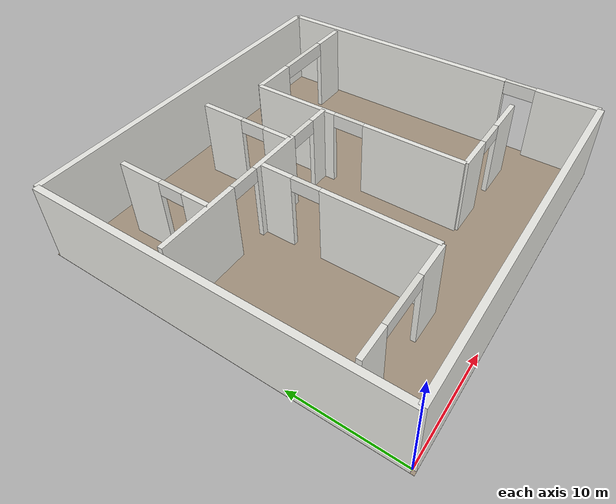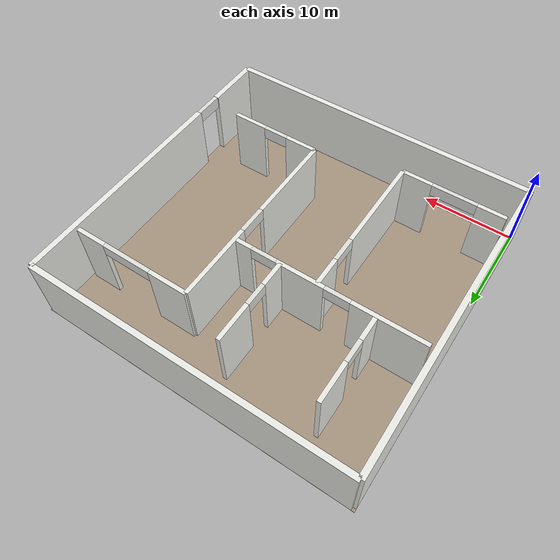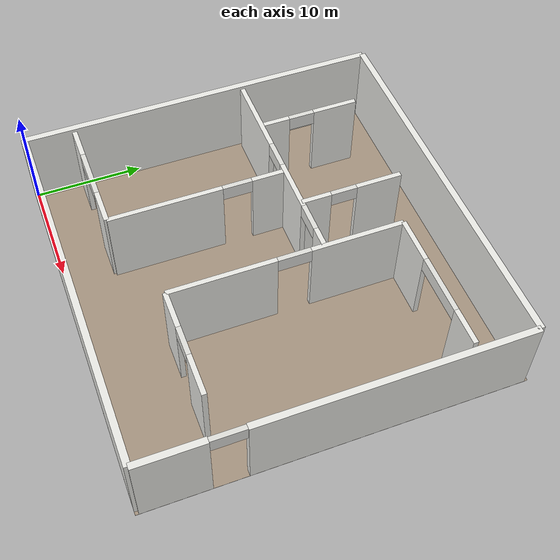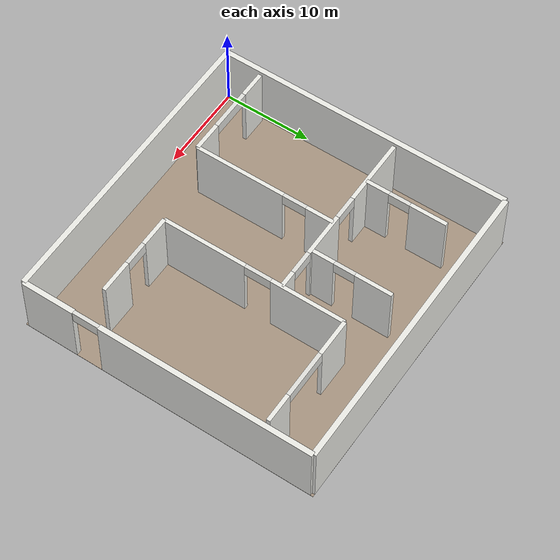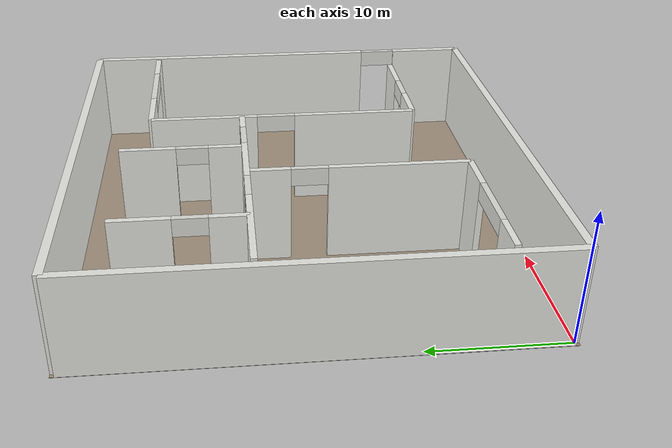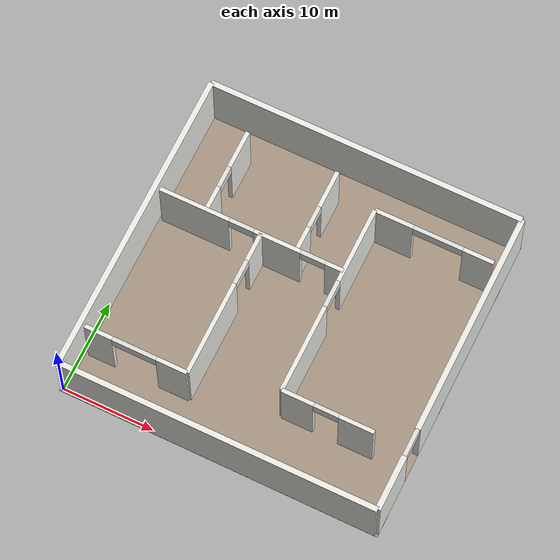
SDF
<sdf version="1.8">
 <world name="semnav_apartment">
  <gravity>0 0 -9.81</gravity>
  <physics name="1ms" type="ode">
   <real_time_update_rate>1000</real_time_update_rate>
   <max_step_size>0.001</max_step_size>
   <real_time_factor>1</real_time_factor>
   <ode>
    <solver>
     <type>quick</type>
     <iters>150</iters>
     <precon_iters>0</precon_iters>
     <sor>1.3999999999999999</sor>
     <use_dynamic_moi_rescaling>true</use_dynamic_moi_rescaling>
    </solver>
    <constraints>
     <cfm>1.0000000000000001e-05</cfm>
     <erp>0.20000000000000001</erp>
     <contact_max_correcting_vel>2000</contact_max_correcting_vel>
     <contact_surface_layer>0.01</contact_surface_layer>
    </constraints>
   </ode>
  </physics>
  <plugin filename="gz-sim-physics-system" name="gz::sim::systems::Physics"/>
  <plugin filename="gz-sim-user-commands-system" name="gz::sim::systems::UserCommands"/>
  <plugin filename="gz-sim-scene-broadcaster-system" name="gz::sim::systems::SceneBroadcaster"/>
  <plugin filename="gz-sim-sensors-system" name="gz::sim::systems::Sensors">
   <render_engine>ogre2</render_engine>
  </plugin>
  <plugin filename="gz-sim-imu-system" name="gz::sim::systems::Imu"/>
  <plugin filename="gz-sim-contact-system" name="gz::sim::systems::Contact"/>
  <scene><ambient>0.45 0.45 0.45</ambient><background>0.72 0.75 0.80</background></scene>
  <light type="directional" name="sun">
   <pose>0 0 8 0 0 0</pose>
   <diffuse>0.85 0.85 0.85 1</diffuse>
   <specular>0.2 0.2 0.2 1</specular>
   <direction>-0.4 0.3 -1</direction>
  </light>
  <light type="point" name="light_room_00">
   <pose>5.850 2.400 7.050 0 0 0</pose>
   <diffuse>0.72 0.72 0.68 1</diffuse>
   <attenuation><range>15.55</range></attenuation>
  </light>
  <light type="point" name="light_room_01">
   <pose>6.000 12.600 7.050 0 0 0</pose>
   <diffuse>0.72 0.72 0.68 1</diffuse>
   <attenuation><range>15.55</range></attenuation>
  </light>
  <light type="point" name="light_room_02">
   <pose>16.275 12.600 7.050 0 0 0</pose>
   <diffuse>0.72 0.72 0.68 1</diffuse>
   <attenuation><range>15.55</range></attenuation>
  </light>
  <light type="point" name="light_room_03">
   <pose>3.150 25.350 7.050 0 0 0</pose>
   <diffuse>0.72 0.72 0.68 1</diffuse>
   <attenuation><range>15.55</range></attenuation>
  </light>
  <light type="point" name="light_room_04">
   <pose>10.650 25.350 7.050 0 0 0</pose>
   <diffuse>0.72 0.72 0.68 1</diffuse>
   <attenuation><range>15.55</range></attenuation>
  </light>
  <light type="point" name="light_room_05">
   <pose>18.150 25.350 7.050 0 0 0</pose>
   <diffuse>0.72 0.72 0.68 1</diffuse>
   <attenuation><range>15.55</range></attenuation>
  </light>
  <light type="point" name="light_room_06">
   <pose>25.650 3.750 7.050 0 0 0</pose>
   <diffuse>0.72 0.72 0.68 1</diffuse>
   <attenuation><range>15.55</range></attenuation>
  </light>
  <light type="point" name="light_room_07">
   <pose>27.150 17.400 7.050 0 0 0</pose>
   <diffuse>0.72 0.72 0.68 1</diffuse>
   <attenuation><range>15.55</range></attenuation>
  </light>
  <light type="point" name="light_room_08">
   <pose>27.150 30.600 7.050 0 0 0</pose>
   <diffuse>0.72 0.72 0.68 1</diffuse>
   <attenuation><range>15.55</range></attenuation>
  </light>
  <light type="point" name="light_room_09">
   <pose>16.050 21.000 7.050 0 0 0</pose>
   <diffuse>0.72 0.72 0.68 1</diffuse>
   <attenuation><range>15.55</range></attenuation>
  </light>
  <model name="apartment_floor">
   <static>true</static>
   <pose>17.1000 16.6500 -0.01 0 0 0</pose>
   <link name="link">
    <collision name="collision"><geometry><box><size>34.8000 33.9000 0.02</size></box></geometry></collision>
    <visual name="visual">
     <geometry><box><size>34.8000 33.9000 0.02</size></box></geometry>
     <material><ambient>0.55 0.50 0.45 1</ambient><diffuse>0.65 0.58 0.50 1</diffuse></material>
    </visual>
   </link>
  </model>
  <model name="wall_south_0">
   <static>true</static>
   <pose>17.1000 0.0000 3.7500 0 0 0</pose>
   <link name="link">
    <collision name="collision"><geometry><box><size>34.2000 0.6000 7.5000</size></box></geometry></collision>
    <visual name="visual">
     <geometry><box><size>34.2000 0.6000 7.5000</size></box></geometry>
     <material><ambient>0.85 0.85 0.85 1</ambient><diffuse>0.92 0.92 0.90 1</diffuse></material>
    </visual>
   </link>
  </model>
  <model name="wall_west_1">
   <static>true</static>
   <pose>0.0000 16.6500 3.7500 0 0 0</pose>
   <link name="link">
    <collision name="collision"><geometry><box><size>0.6000 33.3000 7.5000</size></box></geometry></collision>
    <visual name="visual">
     <geometry><box><size>0.6000 33.3000 7.5000</size></box></geometry>
     <material><ambient>0.85 0.85 0.85 1</ambient><diffuse>0.92 0.92 0.90 1</diffuse></material>
    </visual>
   </link>
  </model>
  <model name="wall_north_2">
   <static>true</static>
   <pose>17.1000 33.3000 3.7500 0 0 0</pose>
   <link name="link">
    <collision name="collision"><geometry><box><size>34.2000 0.6000 7.5000</size></box></geometry></collision>
    <visual name="visual">
     <geometry><box><size>34.2000 0.6000 7.5000</size></box></geometry>
     <material><ambient>0.85 0.85 0.85 1</ambient><diffuse>0.92 0.92 0.90 1</diffuse></material>
    </visual>
   </link>
  </model>
  <model name="wall_east_3">
   <static>true</static>
   <pose>34.2000 3.0000 3.7500 0 0 0</pose>
   <link name="link">
    <collision name="collision"><geometry><box><size>0.6000 6.0000 7.5000</size></box></geometry></collision>
    <visual name="visual">
     <geometry><box><size>0.6000 6.0000 7.5000</size></box></geometry>
     <material><ambient>0.85 0.85 0.85 1</ambient><diffuse>0.92 0.92 0.90 1</diffuse></material>
    </visual>
   </link>
  </model>
  <model name="wall_east_4">
   <static>true</static>
   <pose>34.2000 21.1500 3.7500 0 0 0</pose>
   <link name="link">
    <collision name="collision"><geometry><box><size>0.6000 24.3000 7.5000</size></box></geometry></collision>
    <visual name="visual">
     <geometry><box><size>0.6000 24.3000 7.5000</size></box></geometry>
     <material><ambient>0.85 0.85 0.85 1</ambient><diffuse>0.92 0.92 0.90 1</diffuse></material>
    </visual>
   </link>
  </model>
  <model name="wall_master_south_5">
   <static>true</static>
   <pose>2.1000 4.5000 3.7500 0 0 0</pose>
   <link name="link">
    <collision name="collision"><geometry><box><size>3.0000 0.4500 7.5000</size></box></geometry></collision>
    <visual name="visual">
     <geometry><box><size>3.0000 0.4500 7.5000</size></box></geometry>
     <material><ambient>0.85 0.85 0.85 1</ambient><diffuse>0.92 0.92 0.90 1</diffuse></material>
    </visual>
   </link>
  </model>
  <model name="wall_master_south_6">
   <static>true</static>
   <pose>10.0500 4.5000 3.7500 0 0 0</pose>
   <link name="link">
    <collision name="collision"><geometry><box><size>3.3000 0.4500 7.5000</size></box></geometry></collision>
    <visual name="visual">
     <geometry><box><size>3.3000 0.4500 7.5000</size></box></geometry>
     <material><ambient>0.85 0.85 0.85 1</ambient><diffuse>0.92 0.92 0.90 1</diffuse></material>
    </visual>
   </link>
  </model>
  <model name="wall_master_bed3_7">
   <static>true</static>
   <pose>11.7000 9.6750 3.7500 0 0 0</pose>
   <link name="link">
    <collision name="collision"><geometry><box><size>0.4500 10.3500 7.5000</size></box></geometry></collision>
    <visual name="visual">
     <geometry><box><size>0.4500 10.3500 7.5000</size></box></geometry>
     <material><ambient>0.85 0.85 0.85 1</ambient><diffuse>0.92 0.92 0.90 1</diffuse></material>
    </visual>
   </link>
  </model>
  <model name="wall_master_bed3_8">
   <static>true</static>
   <pose>11.7000 19.1250 3.7500 0 0 0</pose>
   <link name="link">
    <collision name="collision"><geometry><box><size>0.4500 3.1500 7.5000</size></box></geometry></collision>
    <visual name="visual">
     <geometry><box><size>0.4500 3.1500 7.5000</size></box></geometry>
     <material><ambient>0.85 0.85 0.85 1</ambient><diffuse>0.92 0.92 0.90 1</diffuse></material>
    </visual>
   </link>
  </model>
  <model name="wall_upper_south_9">
   <static>true</static>
   <pose>4.4250 20.7000 3.7500 0 0 0</pose>
   <link name="link">
    <collision name="collision"><geometry><box><size>7.6500 0.4500 7.5000</size></box></geometry></collision>
    <visual name="visual">
     <geometry><box><size>7.6500 0.4500 7.5000</size></box></geometry>
     <material><ambient>0.85 0.85 0.85 1</ambient><diffuse>0.92 0.92 0.90 1</diffuse></material>
    </visual>
   </link>
  </model>
  <model name="wall_upper_south_10">
   <static>true</static>
   <pose>13.5000 20.7000 3.7500 0 0 0</pose>
   <link name="link">
    <collision name="collision"><geometry><box><size>5.1000 0.4500 7.5000</size></box></geometry></collision>
    <visual name="visual">
     <geometry><box><size>5.1000 0.4500 7.5000</size></box></geometry>
     <material><ambient>0.85 0.85 0.85 1</ambient><diffuse>0.92 0.92 0.90 1</diffuse></material>
    </visual>
   </link>
  </model>
  <model name="wall_upper_south_11">
   <static>true</static>
   <pose>19.7250 20.7000 3.7500 0 0 0</pose>
   <link name="link">
    <collision name="collision"><geometry><box><size>1.9500 0.4500 7.5000</size></box></geometry></collision>
    <visual name="visual">
     <geometry><box><size>1.9500 0.4500 7.5000</size></box></geometry>
     <material><ambient>0.85 0.85 0.85 1</ambient><diffuse>0.92 0.92 0.90 1</diffuse></material>
    </visual>
   </link>
  </model>
  <model name="wall_bath1_east_12">
   <static>true</static>
   <pose>5.7000 22.0500 3.7500 0 0 0</pose>
   <link name="link">
    <collision name="collision"><geometry><box><size>0.4500 2.7000 7.5000</size></box></geometry></collision>
    <visual name="visual">
     <geometry><box><size>0.4500 2.7000 7.5000</size></box></geometry>
     <material><ambient>0.85 0.85 0.85 1</ambient><diffuse>0.92 0.92 0.90 1</diffuse></material>
    </visual>
   </link>
  </model>
  <model name="wall_bath1_east_13">
   <static>true</static>
   <pose>5.7000 27.9000 3.7500 0 0 0</pose>
   <link name="link">
    <collision name="collision"><geometry><box><size>0.4500 4.2000 7.5000</size></box></geometry></collision>
    <visual name="visual">
     <geometry><box><size>0.4500 4.2000 7.5000</size></box></geometry>
     <material><ambient>0.85 0.85 0.85 1</ambient><diffuse>0.92 0.92 0.90 1</diffuse></material>
    </visual>
   </link>
  </model>
  <model name="wall_bath2_west_14">
   <static>true</static>
   <pose>15.6000 22.0500 3.7500 0 0 0</pose>
   <link name="link">
    <collision name="collision"><geometry><box><size>0.4500 2.7000 7.5000</size></box></geometry></collision>
    <visual name="visual">
     <geometry><box><size>0.4500 2.7000 7.5000</size></box></geometry>
     <material><ambient>0.85 0.85 0.85 1</ambient><diffuse>0.92 0.92 0.90 1</diffuse></material>
    </visual>
   </link>
  </model>
  <model name="wall_bath2_west_15">
   <static>true</static>
   <pose>15.6000 27.9000 3.7500 0 0 0</pose>
   <link name="link">
    <collision name="collision"><geometry><box><size>0.4500 4.2000 7.5000</size></box></geometry></collision>
    <visual name="visual">
     <geometry><box><size>0.4500 4.2000 7.5000</size></box></geometry>
     <material><ambient>0.85 0.85 0.85 1</ambient><diffuse>0.92 0.92 0.90 1</diffuse></material>
    </visual>
   </link>
  </model>
  <model name="wall_kitchen_north_16">
   <static>true</static>
   <pose>22.4250 6.9000 3.7500 0 0 0</pose>
   <link name="link">
    <collision name="collision"><geometry><box><size>3.4500 0.4500 7.5000</size></box></geometry></collision>
    <visual name="visual">
     <geometry><box><size>3.4500 0.4500 7.5000</size></box></geometry>
     <material><ambient>0.85 0.85 0.85 1</ambient><diffuse>0.92 0.92 0.90 1</diffuse></material>
    </visual>
   </link>
  </model>
  <model name="wall_kitchen_north_17">
   <static>true</static>
   <pose>28.7250 6.9000 3.7500 0 0 0</pose>
   <link name="link">
    <collision name="collision"><geometry><box><size>3.7500 0.4500 7.5000</size></box></geometry></collision>
    <visual name="visual">
     <geometry><box><size>3.7500 0.4500 7.5000</size></box></geometry>
     <material><ambient>0.85 0.85 0.85 1</ambient><diffuse>0.92 0.92 0.90 1</diffuse></material>
    </visual>
   </link>
  </model>
  <model name="wall_living_west_18">
   <static>true</static>
   <pose>20.7000 11.7000 3.7500 0 0 0</pose>
   <link name="link">
    <collision name="collision"><geometry><box><size>0.4500 9.6000 7.5000</size></box></geometry></collision>
    <visual name="visual">
     <geometry><box><size>0.4500 9.6000 7.5000</size></box></geometry>
     <material><ambient>0.85 0.85 0.85 1</ambient><diffuse>0.92 0.92 0.90 1</diffuse></material>
    </visual>
   </link>
  </model>
  <model name="wall_living_west_19">
   <static>true</static>
   <pose>20.7000 23.7000 3.7500 0 0 0</pose>
   <link name="link">
    <collision name="collision"><geometry><box><size>0.4500 8.4000 7.5000</size></box></geometry></collision>
    <visual name="visual">
     <geometry><box><size>0.4500 8.4000 7.5000</size></box></geometry>
     <material><ambient>0.85 0.85 0.85 1</ambient><diffuse>0.92 0.92 0.90 1</diffuse></material>
    </visual>
   </link>
  </model>
  <model name="wall_living_north_20">
   <static>true</static>
   <pose>22.8000 27.9000 3.7500 0 0 0</pose>
   <link name="link">
    <collision name="collision"><geometry><box><size>4.2000 0.4500 7.5000</size></box></geometry></collision>
    <visual name="visual">
     <geometry><box><size>4.2000 0.4500 7.5000</size></box></geometry>
     <material><ambient>0.85 0.85 0.85 1</ambient><diffuse>0.92 0.92 0.90 1</diffuse></material>
    </visual>
   </link>
  </model>
  <model name="wall_living_north_21">
   <static>true</static>
   <pose>31.9500 27.9000 3.7500 0 0 0</pose>
   <link name="link">
    <collision name="collision"><geometry><box><size>3.3000 0.4500 7.5000</size></box></geometry></collision>
    <visual name="visual">
     <geometry><box><size>3.3000 0.4500 7.5000</size></box></geometry>
     <material><ambient>0.85 0.85 0.85 1</ambient><diffuse>0.92 0.92 0.90 1</diffuse></material>
    </visual>
   </link>
  </model>
  <model name="lintel_door_wall_east_0">
   <static>true</static>
   <pose>34.2000 7.5000 6.8250 0 0 0</pose>
   <link name="link">
    <collision name="collision"><geometry><box><size>0.4500 3.0000 1.3500</size></box></geometry></collision>
    <visual name="visual">
     <geometry><box><size>0.4500 3.0000 1.3500</size></box></geometry>
     <material><ambient>0.80 0.80 0.80 1</ambient><diffuse>0.88 0.88 0.86 1</diffuse></material>
    </visual>
   </link>
  </model>
  <model name="lintel_door_wall_master_south_0">
   <static>true</static>
   <pose>6.0000 4.5000 6.8250 0 0 0</pose>
   <link name="link">
    <collision name="collision"><geometry><box><size>4.8000 0.4500 1.3500</size></box></geometry></collision>
    <visual name="visual">
     <geometry><box><size>4.8000 0.4500 1.3500</size></box></geometry>
     <material><ambient>0.80 0.80 0.80 1</ambient><diffuse>0.88 0.88 0.86 1</diffuse></material>
    </visual>
   </link>
  </model>
  <model name="lintel_door_wall_master_bed3_0">
   <static>true</static>
   <pose>11.7000 16.2000 6.8250 0 0 0</pose>
   <link name="link">
    <collision name="collision"><geometry><box><size>0.4500 2.7000 1.3500</size></box></geometry></collision>
    <visual name="visual">
     <geometry><box><size>0.4500 2.7000 1.3500</size></box></geometry>
     <material><ambient>0.80 0.80 0.80 1</ambient><diffuse>0.88 0.88 0.86 1</diffuse></material>
    </visual>
   </link>
  </model>
  <model name="lintel_door_wall_upper_south_0">
   <static>true</static>
   <pose>9.6000 20.7000 6.8250 0 0 0</pose>
   <link name="link">
    <collision name="collision"><geometry><box><size>2.7000 0.4500 1.3500</size></box></geometry></collision>
    <visual name="visual">
     <geometry><box><size>2.7000 0.4500 1.3500</size></box></geometry>
     <material><ambient>0.80 0.80 0.80 1</ambient><diffuse>0.88 0.88 0.86 1</diffuse></material>
    </visual>
   </link>
  </model>
  <model name="lintel_door_wall_upper_south_1">
   <static>true</static>
   <pose>17.4000 20.7000 6.8250 0 0 0</pose>
   <link name="link">
    <collision name="collision"><geometry><box><size>2.7000 0.4500 1.3500</size></box></geometry></collision>
    <visual name="visual">
     <geometry><box><size>2.7000 0.4500 1.3500</size></box></geometry>
     <material><ambient>0.80 0.80 0.80 1</ambient><diffuse>0.88 0.88 0.86 1</diffuse></material>
    </visual>
   </link>
  </model>
  <model name="lintel_door_wall_bath1_east_0">
   <static>true</static>
   <pose>5.7000 24.6000 6.8250 0 0 0</pose>
   <link name="link">
    <collision name="collision"><geometry><box><size>0.4500 2.4000 1.3500</size></box></geometry></collision>
    <visual name="visual">
     <geometry><box><size>0.4500 2.4000 1.3500</size></box></geometry>
     <material><ambient>0.80 0.80 0.80 1</ambient><diffuse>0.88 0.88 0.86 1</diffuse></material>
    </visual>
   </link>
  </model>
  <model name="lintel_door_wall_bath2_west_0">
   <static>true</static>
   <pose>15.6000 24.6000 6.8250 0 0 0</pose>
   <link name="link">
    <collision name="collision"><geometry><box><size>0.4500 2.4000 1.3500</size></box></geometry></collision>
    <visual name="visual">
     <geometry><box><size>0.4500 2.4000 1.3500</size></box></geometry>
     <material><ambient>0.80 0.80 0.80 1</ambient><diffuse>0.88 0.88 0.86 1</diffuse></material>
    </visual>
   </link>
  </model>
  <model name="lintel_door_wall_kitchen_north_0">
   <static>true</static>
   <pose>25.5000 6.9000 6.8250 0 0 0</pose>
   <link name="link">
    <collision name="collision"><geometry><box><size>2.7000 0.4500 1.3500</size></box></geometry></collision>
    <visual name="visual">
     <geometry><box><size>2.7000 0.4500 1.3500</size></box></geometry>
     <material><ambient>0.80 0.80 0.80 1</ambient><diffuse>0.88 0.88 0.86 1</diffuse></material>
    </visual>
   </link>
  </model>
  <model name="lintel_door_wall_living_west_0">
   <static>true</static>
   <pose>20.7000 18.0000 6.8250 0 0 0</pose>
   <link name="link">
    <collision name="collision"><geometry><box><size>0.4500 3.0000 1.3500</size></box></geometry></collision>
    <visual name="visual">
     <geometry><box><size>0.4500 3.0000 1.3500</size></box></geometry>
     <material><ambient>0.80 0.80 0.80 1</ambient><diffuse>0.88 0.88 0.86 1</diffuse></material>
    </visual>
   </link>
  </model>
  <model name="lintel_door_wall_living_north_0">
   <static>true</static>
   <pose>27.6000 27.9000 6.8250 0 0 0</pose>
   <link name="link">
    <collision name="collision"><geometry><box><size>5.4000 0.4500 1.3500</size></box></geometry></collision>
    <visual name="visual">
     <geometry><box><size>5.4000 0.4500 1.3500</size></box></geometry>
     <material><ambient>0.80 0.80 0.80 1</ambient><diffuse>0.88 0.88 0.86 1</diffuse></material>
    </visual>
   </link>
  </model>
 </world>
</sdf>
